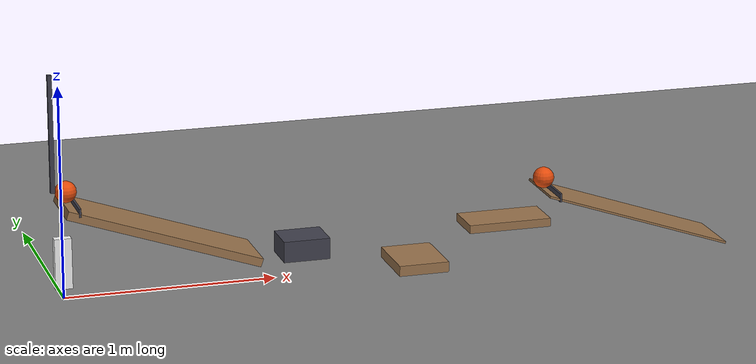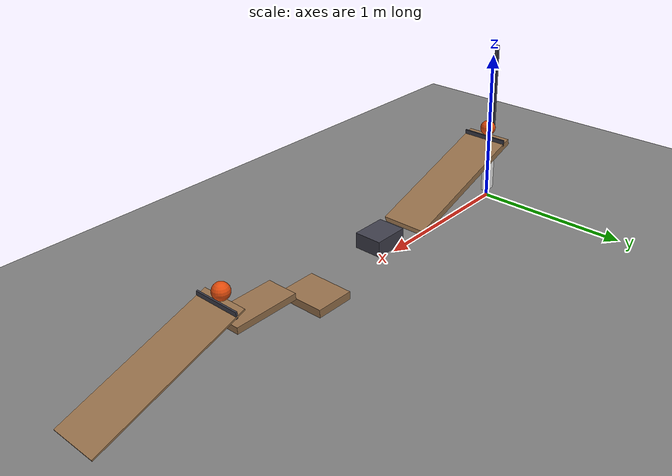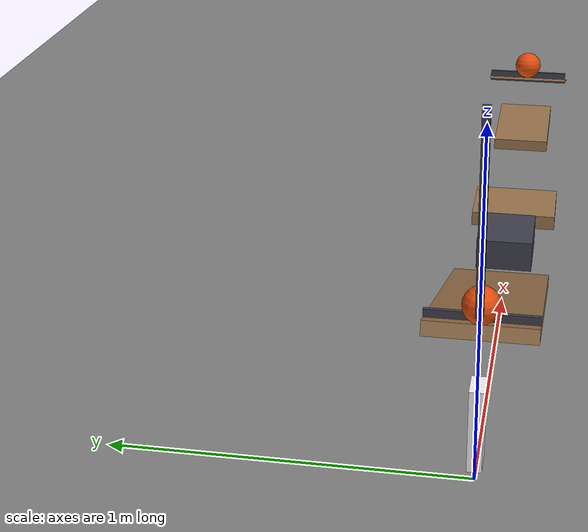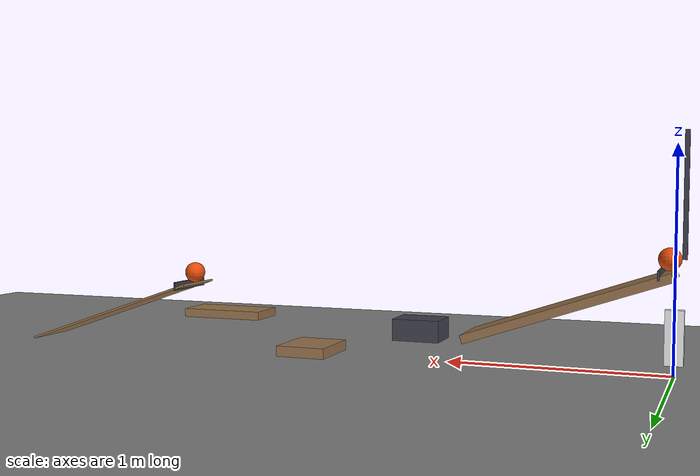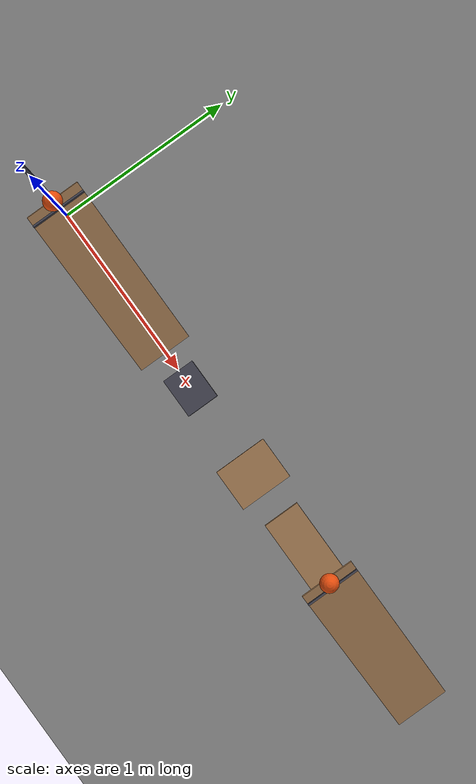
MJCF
<mujoco model="pendulum_ramp_cart_domino_flap">
  <compiler angle="radian"/>
  <option timestep="0.002"/>
  <worldbody>
    <geom name="floor" type="plane" size="8 8 0.1" friction="0.68 0.005 0.0001"/>
    <body name="ramp1">
      <geom name="ramp1" type="box" pos="0.449122 0 0.285735" size="0.475 0.15 0.02" euler="0 0.331612 0" friction="0.68 0.005 0.0001" solref="0.01 1" rgba="0.6 0.45 0.3 1"/>
    </body>
    <body name="ball1" pos="0.0227897 0 0.506565">
      <freejoint/>
      <geom name="ball1" type="sphere" pos="0 0 0" size="0.05" mass="0.2" condim="6" friction="0.68 0.005 0.0001" solref="0.01 1" rgba="0.9 0.3 0.05 1"/>
    </body>
    <body name="ball1 retaining lip">
      <geom name="ball1 retaining lip" type="box" pos="0.05779 0 0.446566" size="0.005 0.15 0.02" friction="0.68 0.005 0.0001" solref="0.01 1" rgba="0.25 0.25 0.3 1"/>
    </body>
    <body name="pendulum1" pos="-0.03721 0 1.05657">
      <joint name="pendulum1_hinge" type="hinge" pos="0 0 0" axis="0 1 0" limited="true" range="-1.39626 0.959931" damping="0.04"/>
      <geom name="pendulum1" type="box" pos="0 0 -0.275" size="0.01 0.01 0.275" mass="0.4" friction="0.68 0.005 0.0001" solref="0.01 1" rgba="0.25 0.25 0.3 1"/>
    </body>
    <body name="cart1" pos="1.12824 0 100.15">
      <joint name="cart1_approximate_slide" type="hinge" pos="0 0 0" axis="0 1 0" limited="true" range="-0.00400001 0" damping="2000"/>
      <geom name="cart1" type="box" pos="0 0 -100" size="0.11 0.09 0.05" mass="0.5" friction="0.68 0.005 0.0001" solref="0.01 1" rgba="0.25 0.25 0.3 1"/>
    </body>
    <body name="domino1 support">
      <geom name="domino1 support" type="box" pos="1.67824 0 0.025" size="0.12 0.15 0.025" friction="0.68 0.005 0.0001" solref="0.01 1" rgba="0.6 0.45 0.3 1"/>
    </body>
    <body name="domino1" pos="0 0 0.17">
      <freejoint/>
      <geom name="domino1" type="box" pos="0 0 0" size="0.04 0.02 0.12" mass="0.25" friction="0.68 0.005 0.0001" solref="0.01 1" rgba="0.95 0.95 0.95 1"/>
    </body>
    <body name="flap1" pos="1.91824 0 0.18">
      <joint name="flap1_hinge" type="hinge" pos="0 0 0" axis="0 1 0" limited="true" range="-1.5708 -0.436332" damping="0.04"/>
      <geom name="flap1" type="box" pos="0.2 0 0" size="0.2 0.1 0.02" mass="0.3" friction="0.68 0.005 0.0001" solref="0.01 1" rgba="0.6 0.45 0.3 1"/>
    </body>
    <body name="ramp2">
      <geom name="ramp2" type="box" pos="2.74636 0 0.165628" size="0.475 0.15 0.005" euler="0 0.331612 0" friction="0.68 0.005 0.0001" solref="0.01 1" rgba="0.6 0.45 0.3 1"/>
    </body>
    <body name="ball2" pos="2.31515 0 0.372276">
      <freejoint/>
      <geom name="ball2" type="sphere" pos="0 0 0" size="0.05" mass="0.2" condim="6" friction="0.68 0.005 0.0001" solref="0.01 1" rgba="0.9 0.3 0.05 1"/>
    </body>
    <body name="ball2 retaining lip">
      <geom name="ball2 retaining lip" type="box" pos="2.35015 0 0.312275" size="0.005 0.15 0.02" friction="0.68 0.005 0.0001" solref="0.01 1" rgba="0.25 0.25 0.3 1"/>
    </body>
  </worldbody>
  <keyframe>
    <key name="start" qpos="0.0227897 0 0.506565 1 0 0 0 0.959931 0 0 0 0.17 1 0 0 0 -1.5708 2.31515 0 0.372276 1 0 0 0" qvel="0 0 0 0 0 0 0 0 0 0 0 0 0 0 0 0 0 0 0 0 0"/>
  </keyframe>
</mujoco>
